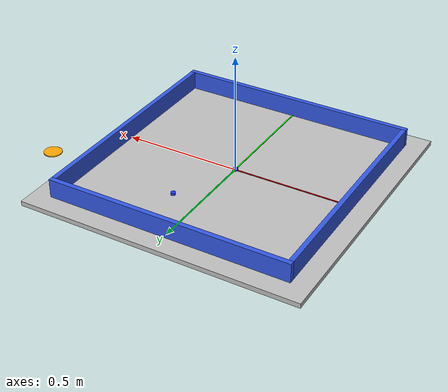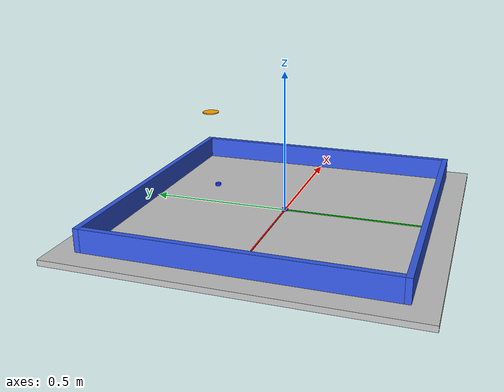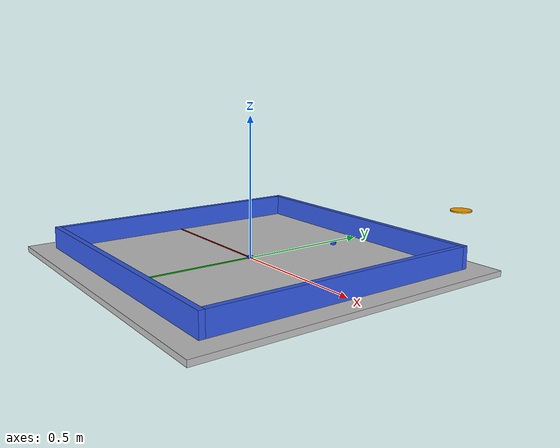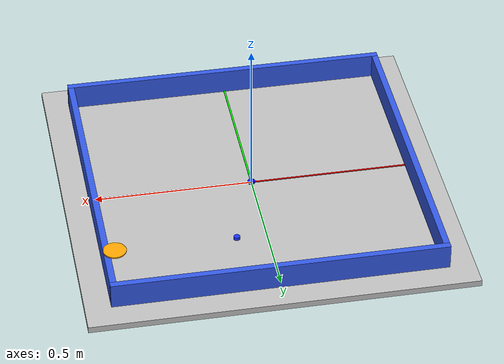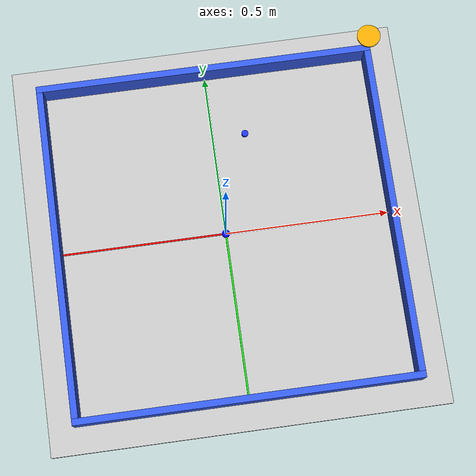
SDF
<sdf version="1.9">
 <world name="robogame_arena">
  <gravity>0 0 -9.81</gravity>
  <physics name="arena_physics" type="ignored">
   <max_step_size>0.001</max_step_size>
   <real_time_factor>1.0</real_time_factor>
  </physics>
  <plugin filename="gz-sim-physics-system" name="gz::sim::systems::Physics"/>
  <plugin filename="gz-sim-user-commands-system" name="gz::sim::systems::UserCommands"/>
  <plugin filename="gz-sim-scene-broadcaster-system" name="gz::sim::systems::SceneBroadcaster"/>
  <light type="directional" name="sun">
   <pose>0 0 10 0 0 0</pose>
   <diffuse>0.8 0.8 0.8 1</diffuse>
   <specular>0.2 0.2 0.2 1</specular>
   <direction>-0.5 0.1 -0.9</direction>
  </light>
  <model name="north_wall">
   <static>true</static>
   <pose>0 0.51 0.04 0 0 0</pose>
   <link name="wall_link">
    <collision name="wall_collision"><geometry><box><size>1.04 0.02 0.08</size></box></geometry></collision>
    <visual name="wall_visual">
     <geometry><box><size>1.04 0.02 0.08</size></box></geometry>
     <material>
      <ambient>0.15 0.25 0.80 1</ambient>
      <diffuse>0.20 0.35 0.90 1</diffuse>
      <specular>0.10 0.10 0.10 1</specular>
     </material>
    </visual>
   </link>
  </model>
  <model name="south_wall">
   <static>true</static>
   <pose>0 -0.51 0.04 0 0 0</pose>
   <link name="wall_link">
    <collision name="wall_collision"><geometry><box><size>1.04 0.02 0.08</size></box></geometry></collision>
    <visual name="wall_visual">
     <geometry><box><size>1.04 0.02 0.08</size></box></geometry>
     <material>
      <ambient>0.15 0.25 0.80 1</ambient>
      <diffuse>0.20 0.35 0.90 1</diffuse>
      <specular>0.10 0.10 0.10 1</specular>
     </material>
    </visual>
   </link>
  </model>
  <model name="east_wall">
   <static>true</static>
   <pose>0.51 0 0.04 0 0 0</pose>
   <link name="wall_link">
    <collision name="wall_collision"><geometry><box><size>0.02 1.00 0.08</size></box></geometry></collision>
    <visual name="wall_visual">
     <geometry><box><size>0.02 1.00 0.08</size></box></geometry>
     <material>
      <ambient>0.15 0.25 0.80 1</ambient>
      <diffuse>0.20 0.35 0.90 1</diffuse>
      <specular>0.10 0.10 0.10 1</specular>
     </material>
    </visual>
   </link>
  </model>
  <model name="west_wall">
   <static>true</static>
   <pose>-0.51 0 0.04 0 0 0</pose>
   <link name="wall_link">
    <collision name="wall_collision"><geometry><box><size>0.02 1.00 0.08</size></box></geometry></collision>
    <visual name="wall_visual">
     <geometry><box><size>0.02 1.00 0.08</size></box></geometry>
     <material>
      <ambient>0.15 0.25 0.80 1</ambient>
      <diffuse>0.20 0.35 0.90 1</diffuse>
      <specular>0.10 0.10 0.10 1</specular>
     </material>
    </visual>
   </link>
  </model>
  <model name="arena_floor">
   <static>true</static>
   <pose>0 0 -0.01 0 0 0</pose>
   <link name="floor_link">
    <collision name="floor_collision"><geometry><box><size>1.2 1.2 0.02</size></box></geometry></collision>
    <visual name="floor_visual">
     <geometry><box><size>1.2 1.2 0.02</size></box></geometry>
     <material>
      <ambient>0.65 0.65 0.65 1</ambient>
      <diffuse>0.75 0.75 0.75 1</diffuse>
      <specular>0.1 0.1 0.1 1</specular>
     </material>
    </visual>
   </link>
  </model>
  <model name="x_axis_marker">
   <static>true</static>
   <pose>0 0 0.001 0 0 0</pose>
   <link name="x_axis_link">
    <visual name="x_axis_visual">
     <geometry><box><size>1.00 0.005 0.002</size></box></geometry>
     <material><ambient>1 0 0 1</ambient><diffuse>1 0 0 1</diffuse><specular>0.1 0.1 0.1 1</specular></material>
    </visual>
   </link>
  </model>
  <model name="y_axis_marker">
   <static>true</static>
   <pose>0 0 0.0015 0 0 0</pose>
   <link name="y_axis_link">
    <visual name="y_axis_visual">
     <geometry><box><size>0.005 1.00 0.003</size></box></geometry>
     <material><ambient>0 1 0 1</ambient><diffuse>0 1 0 1</diffuse><specular>0.1 0.1 0.1 1</specular></material>
    </visual>
   </link>
  </model>
  <model name="origin_marker">
   <static>true</static>
   <pose>0 0 0.003 0 0 0</pose>
   <link name="origin_link">
    <visual name="origin_visual">
     <geometry><cylinder><radius>0.012</radius><length>0.006</length></cylinder></geometry>
     <material><ambient>0 0 1 1</ambient><diffuse>0 0 1 1</diffuse><specular>0.1 0.1 0.1 1</specular></material>
    </visual>
   </link>
  </model>
  <model name="waypoint_1">
   <static>true</static>
   <pose>0.5 0.5 0.2 0 0 0</pose>
   <link name="waypoint_link">
    <visual name="waypoint_visual">
     <geometry><cylinder><radius>0.035</radius><length>0.004</length></cylinder></geometry>
     <material>
      <ambient>1 0.65 0 1</ambient>
      <diffuse>1 0.65 0 1</diffuse>
      <specular>0.2 0.2 0.2 1</specular>
     </material>
    </visual>
   </link>
  </model>
  <model name="token_1">
   <pose>0.1 0.3 0.03 0 0 0</pose>
   <link name="token_link">
    <inertial>
     <mass>0.03</mass>
     <inertia><ixx>0.00005025</ixx><iyy>0.00005025</iyy><izz>0.000096</izz></inertia>
    </inertial>
    <collision name="token_collision">
     <geometry><cylinder><radius>0.01</radius><length>0.01</length></cylinder></geometry>
     <surface><friction><ode><mu>0.8</mu><mu2>0.8</mu2></ode></friction></surface>
    </collision>
    <visual name="token_visual">
     <geometry><cylinder><radius>0.01</radius><length>0.01</length></cylinder></geometry>
     <material>
      <ambient>0.1 0.2 1.0 1</ambient>
      <diffuse>0.1 0.2 1.0 1</diffuse>
      <specular>0.3 0.3 0.3 1</specular>
     </material>
    </visual>
   </link>
  </model>
 </world>
</sdf>
